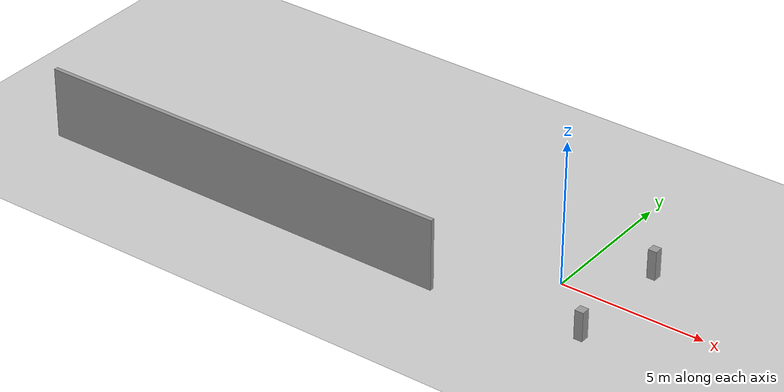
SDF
<?xml version="1.0" ?>
<sdf version="1.6">
  <world name="custom_world">
    <!-- 添加地面 -->
    <include>
      <uri>model://ground_plane</uri>
    </include>

    <!-- 添加基本光照 -->
    <include>
      <uri>model://sun</uri>
    </include>

    <!-- 添加主要结构（从model.sdf） -->
    <model name="main_structure">
      <pose>-10.459 -2.598 0 0 0 0</pose>

      <!-- 外墙 (来自model.sdf的Wall_8等) -->
      <link name='Wall_8'>
        <collision name='Wall_8_Collision'>
          <geometry>
            <box>
              <size>15 0.15 2.5</size>
            </box>
          </geometry>
          <pose>0 0 1.25 0 0 0</pose>
        </collision>
        <visual name='Wall_8_Visual'>
          <pose>0 0 1.25 0 0 0</pose>
          <geometry>
            <box>
              <size>15 0.15 2.5</size>
            </box>
          </geometry>
          <material>
            <script>
              <uri>file://media/materials/scripts/gazebo.material</uri>
              <name>Gazebo/Grey</name>
            </script>
          </material>
        </visual>
      </link>

      <!-- 这里需要添加model.sdf中的其他墙壁 -->
    </model>

    <!-- 添加柱子模型 -->
    <model name="pillar1">
      <pose>2 2 0 0 0 0</pose>
      <link name="link">
        <collision name="collision">
          <geometry>
            <box>
              <size>0.3 0.3 2</size>
            </box>
          </geometry>
        </collision>
        <visual name="visual">
          <geometry>
            <box>
              <size>0.3 0.3 2</size>
            </box>
          </geometry>
          <material>
            <script>
              <uri>file://media/materials/scripts/gazebo.material</uri>
              <name>Gazebo/Grey</name>
            </script>
          </material>
        </visual>
      </link>
    </model>

    <!-- 添加更多柱子实例 -->
    <model name="pillar2">
      <pose>2 -2 0 0 0 0</pose>
      <link name="link">
        <collision name="collision">
          <geometry>
            <box>
              <size>0.3 0.3 2</size>
            </box>
          </geometry>
        </collision>
        <visual name="visual">
          <geometry>
            <box>
              <size>0.3 0.3 2</size>
            </box>
          </geometry>
          <material>
            <script>
              <uri>file://media/materials/scripts/gazebo.material</uri>
              <name>Gazebo/Grey</name>
            </script>
          </material>
        </visual>
      </link>
    </model>

    <!-- 物理和渲染设置 -->
    <physics type="ode">
      <real_time_update_rate>1000.0</real_time_update_rate>
      <max_step_size>0.001</max_step_size>
      <real_time_factor>1</real_time_factor>
      <ode>
        <solver>
          <type>quick</type>
          <iters>150</iters>
          <precon_iters>0</precon_iters>
          <sor>1.400000</sor>
          <use_dynamic_moi_rescaling>1</use_dynamic_moi_rescaling>
        </solver>
        <constraints>
          <cfm>0.00001</cfm>
          <erp>0.2</erp>
          <contact_max_correcting_vel>2000.000000</contact_max_correcting_vel>
          <contact_surface_layer>0.01000</contact_surface_layer>
        </constraints>
      </ode>
    </physics>
  </world>
</sdf>
